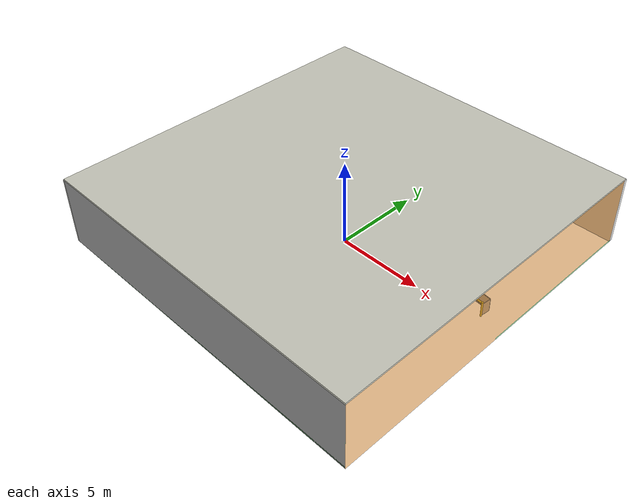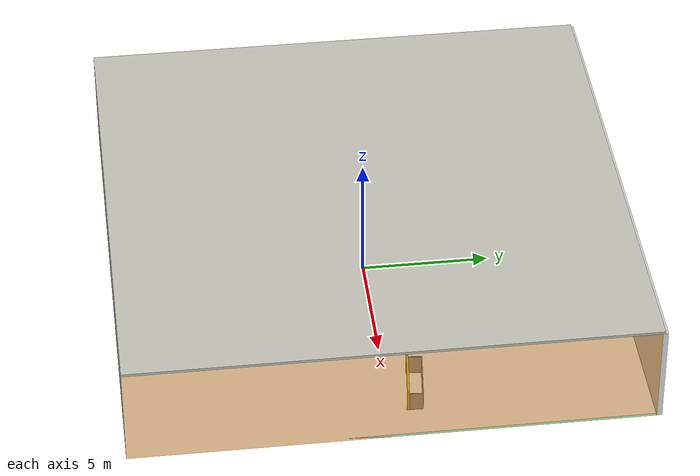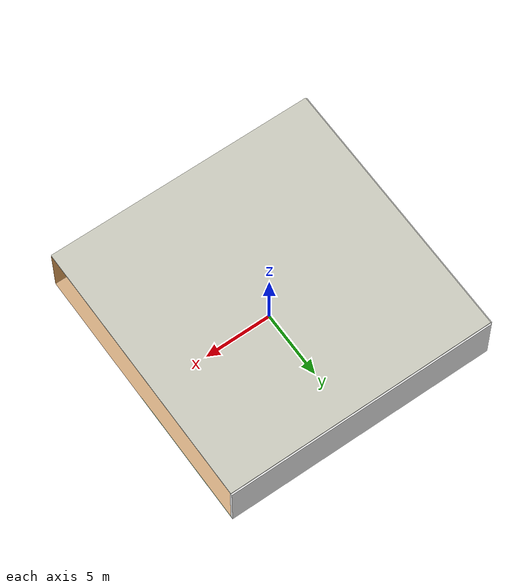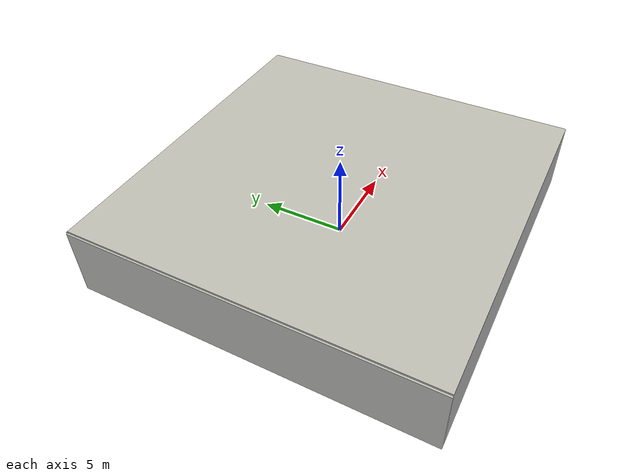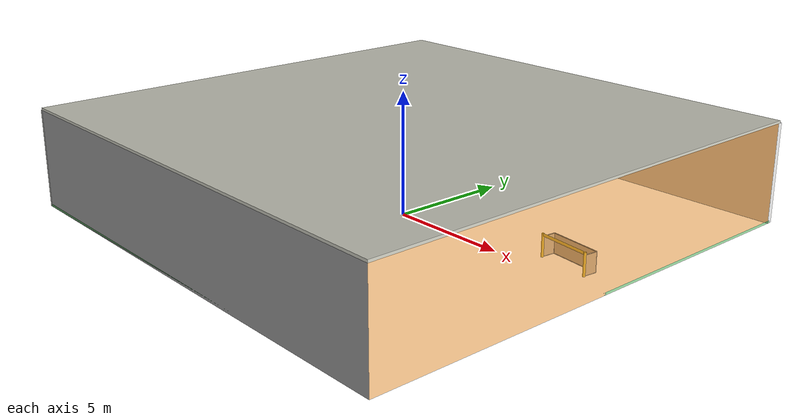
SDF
<sdf version="1.4">
 <world name="default">
  <physics type="ode">
   <max_step_size>0.001</max_step_size>
   <real_time_factor>1</real_time_factor>
   <real_time_update_rate>1000</real_time_update_rate>
   <gravity>0 0 -9.8</gravity>
  </physics>
  <scene><ambient>0.4 0.4 0.4 1</ambient><background>0.7 0.7 0.7 1</background><shadows>1</shadows></scene>
  <model name="Surrounding">
   <static>1</static>
   <link name="Ceiling">
    <collision name="Ceiling_Collision"><geometry><box><size>20 20 0.1</size></box></geometry></collision>
    <visual name="Ceiling_Visual">
     <geometry><box><size>20 20 0.1</size></box></geometry>
     <material>
      <script><uri>file://media/materials/scripts/gazebo.material</uri><name>Gazebo/PaintedWall</name></script>
     </material>
    </visual>
    <pose>0 0 4.05 0 0 0</pose>
   </link>
   <link name="Wall_South">
    <collision name="Wall_South_Collision">
     <geometry><box><size>20 0 4</size></box></geometry>
     <pose>0 0 2 0 -0 0</pose>
    </collision>
    <visual name="Wall_South_Visual">
     <pose>0 0 2 0 -0 0</pose>
     <geometry><box><size>20 0 4</size></box></geometry>
     <material>
      <script><uri>file://media/materials/scripts/gazebo.material</uri><name>Gazebo/Grey</name></script>
     </material>
    </visual>
    <velocity_decay><linear>0</linear><angular>0</angular></velocity_decay>
    <pose>0 -10 0 0 -0 0</pose>
   </link>
   <link name="Wall_East">
    <collision name="Wall_21_Collision">
     <geometry><box><size>20 0 4</size></box></geometry>
     <pose>0 0 2 0 -0 0</pose>
    </collision>
    <visual name="Wall_21_Visual">
     <pose>0 0 2 0 -0 0</pose>
     <geometry><box><size>20 0 4</size></box></geometry>
     <material>
      <script>
       <uri>file://media/materials/scripts/gazebo.material</uri>
       <name>Gazebo/OrangeTransparent</name>
      </script>
     </material>
    </visual>
    <velocity_decay><linear>0</linear><angular>0</angular></velocity_decay>
    <pose>10 0 0 0 -0 1.5708</pose>
   </link>
   <link name="Wall_North">
    <collision name="Wall_22_Collision">
     <geometry><box><size>20 0.2 4</size></box></geometry>
     <pose>0 0 2 0 -0 0</pose>
    </collision>
    <visual name="Wall_22_Visual">
     <pose>0 0 2 0 -0 0</pose>
     <geometry><box><size>20 0.2 4</size></box></geometry>
     <material>
      <script><uri>file://media/materials/scripts/gazebo.material</uri><name>Gazebo/WhiteGlow</name></script>
     </material>
    </visual>
    <velocity_decay><linear>0</linear><angular>0</angular></velocity_decay>
    <pose>0 10 0 0 -0 0</pose>
   </link>
   <link name="Wall_West">
    <collision name="Wall_23_Collision">
     <geometry><box><size>20 0.2 4</size></box></geometry>
     <pose>0 0 2 0 -0 0</pose>
    </collision>
    <visual name="Wall_23_Visual">
     <pose>0 0 2 0 -0 0</pose>
     <geometry><box><size>20 0.2 4</size></box></geometry>
     <material>
      <script><uri>file://media/materials/scripts/gazebo.material</uri><name>Gazebo/CeilingTiled</name></script>
     </material>
    </visual>
    <velocity_decay><linear>0</linear><angular>0</angular></velocity_decay>
    <pose>-10 0 0 0 0 -1.5708</pose>
   </link>
   <link name="Ground_link">
    <collision name="collision">
     <pose>0 0 .05 0 -0 0</pose>
     <geometry><box><size>20 20 0.1</size></box></geometry>
    </collision>
    <visual name="visual">
     <pose>0 0 .05 0 -0 0</pose>
     <geometry><box><size>20 20 0.1</size></box></geometry>
     <material>
      <script><uri>file://media/materials/scripts/gazebo.material</uri><name>Gazebo/GreenTransparent</name></script>
     </material>
    </visual>
   </link>
   <static>1</static>
  </model>
  <spherical_coordinates>
   <surface_model>EARTH_WGS84</surface_model>
   <latitude_deg>0</latitude_deg>
   <longitude_deg>0</longitude_deg>
   <elevation>0</elevation>
   <heading_deg>0</heading_deg>
  </spherical_coordinates>
  <light name="lightball_0" type="diffuse">
   <diffuse>0.8 0.8 0.8 1</diffuse>
   <specular>0.2 0.2 0.2 1</specular>
   <attenuation>
    <range>100</range>
    <constant>0.7</constant>
    <linear>0.01</linear>
    <quadratic>0.001</quadratic>
   </attenuation>
   <direction>-0.5 0.1 -0.9</direction>
   <pose>-3.91878108987 8.94584183822 3.69061158874 0 0 0</pose>
  </light>
  <light name="lightball_1" type="diffuse">
   <diffuse>0.8 0.8 0.8 1</diffuse>
   <specular>0.2 0.2 0.2 1</specular>
   <attenuation>
    <range>100</range>
    <constant>0.7</constant>
    <linear>0.01</linear>
    <quadratic>0.001</quadratic>
   </attenuation>
   <direction>-0.5 0.1 -0.9</direction>
   <pose>5.53094914349 3.93202873382 3.3261579557 0 0 0</pose>
  </light>
  <light name="lightball_2" type="diffuse">
   <diffuse>0.8 0.8 0.8 1</diffuse>
   <specular>0.2 0.2 0.2 1</specular>
   <attenuation>
    <range>100</range>
    <constant>0.7</constant>
    <linear>0.01</linear>
    <quadratic>0.001</quadratic>
   </attenuation>
   <direction>-0.5 0.1 -0.9</direction>
   <pose>-5.2527751826 5.85807187247 3.58484174557 0 0 0</pose>
  </light>
  <light name="lightball_3" type="diffuse">
   <diffuse>0.8 0.8 0.8 1</diffuse>
   <specular>0.2 0.2 0.2 1</specular>
   <attenuation>
    <range>100</range>
    <constant>0.7</constant>
    <linear>0.01</linear>
    <quadratic>0.001</quadratic>
   </attenuation>
   <direction>-0.5 0.1 -0.9</direction>
   <pose>-3.86724168985 -0.738106189683 2.67863621411 0 0 0</pose>
  </light>
  <light name="lightball_4" type="diffuse">
   <diffuse>0.8 0.8 0.8 1</diffuse>
   <specular>0.2 0.2 0.2 1</specular>
   <attenuation>
    <range>100</range>
    <constant>0.7</constant>
    <linear>0.01</linear>
    <quadratic>0.001</quadratic>
   </attenuation>
   <direction>-0.5 0.1 -0.9</direction>
   <pose>-1.91636714678 1.64870567669 3.22007673928 0 0 0</pose>
  </light>
  <include>
   <uri>model://robocup_3Dsim_goal</uri>
   <pose>-3.72772873804 5.19594910923 0 0 0 1.53165974094</pose>
  </include>
  <include><uri>model://table</uri><pose>-2.42682081567 -2.06500008536 0 0 0 0.480950545755</pose></include>
  <include>
   <uri>model://robocup_3Dsim_goal</uri>
   <pose>-1.21954951625 4.01744877175 0 0 0 1.17727344252</pose>
  </include>
  <include><uri>model://cabinet</uri><pose>1.59865332403 5.51106307426 0 0 0 1.84838319963</pose></include>
  <include>
   <uri>model://robocup_3Dsim_goal</uri>
   <pose>7.51014269605 0.795004390231 0 0 0 1.46392887558</pose>
  </include>
 </world>
</sdf>

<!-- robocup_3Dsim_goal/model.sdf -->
<sdf version="1.5">
  <model name="robocup_3d_goal">
    <static>true</static>
    <link name="left_post">
      <pose>0 1.05 0.45 0 0 0</pose>
      <collision name="collision">
        <geometry>
          <cylinder>
            <radius>0.05</radius>
            <length>0.9</length>
          </cylinder>
        </geometry>
      </collision>
      <visual name="visual">
        <geometry>
          <cylinder>
            <radius>0.05</radius>
            <length>0.9</length>
          </cylinder>
        </geometry>
        <material>
          <script>
            <uri>file://media/materials/scripts/gazebo.material</uri>
            <name>Gazebo/ZincYellow</name>
          </script>
        </material>
      </visual>
    </link>
    <link name="left_support_horiz_lower">
      <pose>0.30 1.05 0.01 0 0 0</pose>
      <collision name="collision">
        <geometry>
          <box>
            <size>0.50 0.02 0.02</size>
          </box>
        </geometry>
      </collision>
      <visual name="visual">
        <geometry>
          <box>
            <size>0.50 0.02 0.02</size>
          </box>
        </geometry>
        <material>
          <script>
            <uri>file://media/materials/scripts/gazebo.material</uri>
            <name>Gazebo/White</name>
          </script>
        </material>
      </visual>
    </link>
    <link name="left_support_horiz_upper">
      <pose>0.30 1.05 0.79 0 0 0</pose>
      <collision name="collision">
        <geometry>
          <box>
            <size>0.50 0.02 0.02</size>
          </box>
        </geometry>
      </collision>
      <visual name="visual">
        <geometry>
          <box>
            <size>0.50 0.02 0.02</size>
          </box>
        </geometry>
        <material>
          <script>
            <uri>file://media/materials/scripts/gazebo.material</uri>
            <name>Gazebo/White</name>
          </script>
        </material>
      </visual>
    </link>
    <link name="left_support_vertical">
      <pose>0.56 1.05 0.4 0 1.5708 0</pose>
      <collision name="collision">
        <geometry>
          <box>
            <size>0.80 0.02 0.02</size>
          </box>
        </geometry>
      </collision>
      <visual name="visual">
        <geometry>
          <box>
            <size>0.80 0.02 0.02</size>
          </box>
        </geometry>
        <material>
          <script>
            <uri>file://media/materials/scripts/gazebo.material</uri>
            <name>Gazebo/White</name>
          </script>
        </material>
      </visual>
    </link>
    <link name="right_support_horiz_lower">
      <pose>0.30 -1.05 0.01 0 0 0</pose>
      <collision name="collision">
        <geometry>
          <box>
            <size>0.50 0.02 0.02</size>
          </box>
        </geometry>
      </collision>
      <visual name="visual">
        <geometry>
          <box>
            <size>0.50 0.02 0.02</size>
          </box>
        </geometry>
        <material>
          <script>
            <uri>file://media/materials/scripts/gazebo.material</uri>
            <name>Gazebo/White</name>
          </script>
        </material>
      </visual>
    </link>
    <link name="right_support_horiz_upper">
      <pose>0.30 -1.05 0.79 0 0 0</pose>
      <collision name="collision">
        <geometry>
          <box>
            <size>0.50 0.02 0.02</size>
          </box>
        </geometry>
      </collision>
      <visual name="visual">
        <geometry>
          <box>
            <size>0.50 0.02 0.02</size>
          </box>
        </geometry>
        <material>
          <script>
            <uri>file://media/materials/scripts/gazebo.material</uri>
            <name>Gazebo/White</name>
          </script>
        </material>
      </visual>
    </link>
    <link name="right_support_vertical">
      <pose>0.56 -1.05 0.4 0 1.5708 0</pose>
      <collision name="collision">
        <geometry>
          <box>
            <size>0.80 0.02 0.02</size>
          </box>
        </geometry>
      </collision>
      <visual name="visual">
        <geometry>
          <box>
            <size>0.80 0.02 0.02</size>
          </box>
        </geometry>
        <material>
          <script>
            <uri>file://media/materials/scripts/gazebo.material</uri>
            <name>Gazebo/White</name>
          </script>
        </material>
      </visual>
    </link>
    <link name="center_support_horiz_lower">
      <pose>0.56 0 0.01 0 1.5708 0</pose>
      <collision name="collision">
        <geometry>
          <box>
            <size>0.02 2.08 0.02</size>
          </box>
        </geometry>
      </collision>
      <visual name="visual">
        <geometry>
          <box>
            <size>0.02 2.08 0.02</size>
          </box>
        </geometry>
        <material>
          <script>
            <uri>file://media/materials/scripts/gazebo.material</uri>
            <name>Gazebo/White</name>
          </script>
        </material>
      </visual>
    </link>
    <link name="center_support_horiz_upper">
      <pose>0.56 0 0.79 0 1.5708 0</pose>
      <collision name="collision">
        <geometry>
          <box>
            <size>0.02 2.08 0.02</size>
          </box>
        </geometry>
      </collision>
      <visual name="visual">
        <geometry>
          <box>
            <size>0.02 2.08 0.02</size>
          </box>
        </geometry>
        <material>
          <script>
            <uri>file://media/materials/scripts/gazebo.material</uri>
            <name>Gazebo/White</name>
          </script>
        </material>
      </visual>
    </link>
    <link name="right_post">
      <pose>0 -1.05 0.45 0 0 0</pose>
      <collision name="collision">
        <geometry>
          <cylinder>
            <radius>0.05</radius>
            <length>0.9</length>
          </cylinder>
        </geometry>
      </collision>
      <visual name="visual">
        <geometry>
          <cylinder>
            <radius>0.05</radius>
            <length>0.9</length>
          </cylinder>
        </geometry>
        <material>
          <script>
            <uri>file://media/materials/scripts/gazebo.material</uri>
            <name>Gazebo/ZincYellow</name>
          </script>
        </material>
      </visual>
    </link>
    <link name="crossbar">
      <pose>0 0 0.85 1.57 1.57 0</pose>
      <collision name="collision">
        <geometry>
          <cylinder>
            <radius>0.05</radius>
            <length>2.0</length>
          </cylinder>
        </geometry>
      </collision>
      <visual name="visual">
        <geometry>
          <cylinder>
            <radius>0.05</radius>
            <length>2.0</length>
          </cylinder>
        </geometry>
        <material>
          <script>
            <uri>file://media/materials/scripts/gazebo.material</uri>
            <name>Gazebo/ZincYellow</name>
          </script>
        </material>
      </visual>
    </link>
    <link name="center_net">
      <pose>0.56 0 0.40 0 0 0</pose>
      <collision name="collision">
        <geometry>
          <box>
            <size>0.01 2.1 0.80</size>
          </box>
        </geometry>
      </collision>
      <visual name="visual">
        <geometry>
          <box>
            <size>0.01 2.1 0.80</size>
          </box>
        </geometry>
        <material>
          <script>
            <uri>model://../model_source/models/robocup09_spl_field/materials/scripts/</uri>
            <uri>model://../model_source/models/robocup09_spl_field/materials/textures/</uri>
            <name>RoboCup/Net</name>
          </script>
        </material>
      </visual>
    </link>
    <link name="left_net">
      <pose>0.30 1.05 0.40 0 0 0</pose>
      <collision name="collision">
        <geometry>
          <box>
            <size>0.50 0.01 0.76</size>
          </box>
        </geometry>
      </collision>
      <visual name="visual">
        <geometry>
          <box>
            <size>0.50 0.01 0.76</size>
          </box>
        </geometry>
        <material>
          <script>
            <uri>model://../model_source/models/robocup09_spl_field/materials/scripts/</uri>
            <uri>model://../model_source/models/robocup09_spl_field/materials/textures/</uri>
            <name>RoboCup/Net</name>
          </script>
        </material>
      </visual>
    </link>
    <link name="right_net">
      <pose>0.30 -1.05 0.40 0 0 0</pose>
      <collision name="collision">
        <geometry>
          <box>
            <size>0.50 0.01 0.76</size>
          </box>
        </geometry>
      </collision>
      <visual name="visual">
        <geometry>
          <box>
            <size>0.50 0.01 0.76</size>
          </box>
        </geometry>
        <material>
          <script>
            <uri>model://../model_source/models/robocup09_spl_field/materials/scripts/</uri>
            <uri>model://../model_source/models/robocup09_spl_field/materials/textures/</uri>
            <name>RoboCup/Net</name>
          </script>
        </material>
      </visual>
    </link>
  </model>
</sdf>

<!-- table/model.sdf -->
<sdf version="1.5">
  <model name="table">
    <static>true</static>
    <link name="link">
      <collision name="surface">
        <pose>0 0 1.0 0 0 0</pose>
        <geometry>
          <box>
            <size>1.5 0.8 0.03</size>
          </box>
        </geometry>
        <surface>
          <friction>
            <ode>
              <mu>0.6</mu>
              <mu2>0.6</mu2>
            </ode>
          </friction>
        </surface>
      </collision>
      <visual name="visual1">
        <pose>0 0 1.0 0 0 0</pose>
        <geometry>
          <box>
            <size>1.5 0.8 0.03</size>
          </box>
        </geometry>
        <material>
          <script>
            <uri>model://media/materials/scripts/gazebo.material</uri>
            <name>Gazebo/Wood</name>
          </script>
        </material>
      </visual>
      <collision name="front_left_leg">
        <pose>0.68 0.38 0.5 0 0 0</pose>
        <geometry>
          <cylinder>
            <radius>0.02</radius>
            <length>1.0</length>
          </cylinder>
        </geometry>
      </collision>
      <visual name="front_left_leg">
        <pose>0.68 0.38 0.5 0 0 0</pose>
        <geometry>
          <cylinder>
            <radius>0.02</radius>
            <length>1.0</length>
          </cylinder>
        </geometry>
        <material>
          <script>
            <uri>model://media/materials/scripts/gazebo.material</uri>
            <name>Gazebo/Grey</name>
          </script>
        </material>
      </visual>
      <collision name="front_right_leg">
        <pose>0.68 -0.38 0.5 0 0 0</pose>
        <geometry>
          <cylinder>
            <radius>0.02</radius>
            <length>1.0</length>
          </cylinder>
        </geometry>
      </collision>
      <visual name="front_right_leg">
        <pose>0.68 -0.38 0.5 0 0 0</pose>
        <geometry>
          <cylinder>
            <radius>0.02</radius>
            <length>1.0</length>
          </cylinder>
        </geometry>
        <material>
          <script>
            <uri>model://media/materials/scripts/gazebo.material</uri>
            <name>Gazebo/Grey</name>
          </script>
        </material>
      </visual>
      <collision name="back_right_leg">
        <pose>-0.68 -0.38 0.5 0 0 0</pose>
        <geometry>
          <cylinder>
            <radius>0.02</radius>
            <length>1.0</length>
          </cylinder>
        </geometry>
      </collision>
      <visual name="back_right_leg">
        <pose>-0.68 -0.38 0.5 0 0 0</pose>
        <geometry>
          <cylinder>
            <radius>0.02</radius>
            <length>1.0</length>
          </cylinder>
        </geometry>
        <material>
          <script>
            <uri>model://media/materials/scripts/gazebo.material</uri>
            <name>Gazebo/Grey</name>
          </script>
        </material>
      </visual>
      <collision name="back_left_leg">
        <pose>-0.68 0.38 0.5 0 0 0</pose>
        <geometry>
          <cylinder>
            <radius>0.02</radius>
            <length>1.0</length>
          </cylinder>
        </geometry>
      </collision>
      <visual name="back_left_leg">
        <pose>-0.68 0.38 0.5 0 0 0</pose>
        <geometry>
          <cylinder>
            <radius>0.02</radius>
            <length>1.0</length>
          </cylinder>
        </geometry>
        <material>
          <script>
            <uri>model://media/materials/scripts/gazebo.material</uri>
            <name>Gazebo/Grey</name>
          </script>
        </material>
      </visual>
    </link>
  </model>
</sdf>

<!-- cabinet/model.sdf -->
<sdf version="1.5">
  <model name="cabinet">
    <static>true</static>
    <link name="cabinet_bottom_plate">
      <inertial>
        <pose>0 0 -1 0 0 0</pose>
        <inertia>
          <ixx>2.050000</ixx>
          <ixy>0</ixy>
          <ixz>0</ixz>
          <iyy>2.050000</iyy>
          <iyz>0</iyz>
          <izz>2.050000</izz>
        </inertia>
        <mass>25.000000</mass>
      </inertial>
      <collision name="cabinet_bottom_plate_geom">
        <pose>0 0 0.010000 0 0 0</pose>
        <geometry>
          <box>
            <size>0.450000 0.450000 0.020000</size>
          </box>
        </geometry>
      </collision>
      <visual name="cabinet_bottom_plate_geom_visual">
        <pose>0 0 0.010000 0 0 0</pose>
        <geometry>
          <box>
            <size>0.450000 0.450000 0.020000</size>
          </box>
        </geometry>
        <material>
          <script>
            <uri>model://media/materials/scripts/gazebo.material</uri>
            <name>Gazebo/Wood</name>
          </script>
        </material>
      </visual>
      <collision name="cabinet_bottom_plate_geom_cabinet_back_plate">
        <pose>0.235000 0 0.510000 0 0 0</pose>
        <geometry>
          <box>
            <size>0.020000 0.450000 1.020000</size>
          </box>
        </geometry>
      </collision>
      <visual name="cabinet_bottom_plate_geom_cabinet_back_plate_visual">
        <pose>0.235000 0 0.510000 0 0 0</pose>
        <geometry>
          <box>
            <size>0.020000 0.450000 1.020000</size>
          </box>
        </geometry>
        <material>
          <script>
            <uri>model://media/materials/scripts/gazebo.material</uri>
            <name>Gazebo/Wood</name>
          </script>
        </material>
      </visual>
      <collision name="cabinet_bottom_plate_geom_cabinet_left_plate">
        <pose>0 0.235000 0.510000 0 0 0</pose>
        <geometry>
          <box>
            <size>0.450000 0.020000 1.020000</size>
          </box>
        </geometry>
      </collision>
      <visual name="cabinet_bottom_plate_geom_cabinet_left_plate_visual">
        <pose>0 0.235000 0.510000 0 0 0</pose>
        <geometry>
          <box>
            <size>0.450000 0.020000 1.020000</size>
          </box>
        </geometry>
        <material>
          <script>
            <uri>model://media/materials/scripts/gazebo.material</uri>
            <name>Gazebo/Wood</name>
          </script>
        </material>
      </visual>
      <collision name="cabinet_bottom_plate_geom_cabinet_middle_plate">
        <pose>0 0 0.510000 0 0 0</pose>
        <geometry>
          <box>
            <size>0.450000 0.450000 0.020000</size>
          </box>
        </geometry>
      </collision>
      <visual name="cabinet_bottom_plate_geom_cabinet_middle_plate_visual">
        <pose>0 0 0.510000 0 0 0</pose>
        <geometry>
          <box>
            <size>0.450000 0.450000 0.020000</size>
          </box>
        </geometry>
        <material>
          <script>
            <uri>model://media/materials/scripts/gazebo.material</uri>
            <name>Gazebo/Wood</name>
          </script>
        </material>
      </visual>
      <collision name="cabinet_bottom_plate_geom_cabinet_right_plate">
        <pose>0 -0.235000 0.510000 0 0 0</pose>
        <geometry>
          <box>
            <size>0.450000 0.020000 1.020000</size>
          </box>
        </geometry>
      </collision>
      <visual name="cabinet_bottom_plate_geom_cabinet_right_plate_visual">
        <pose>0 -0.235000 0.510000 0 0 0</pose>
        <geometry>
          <box>
            <size>0.450000 0.020000 1.020000</size>
          </box>
        </geometry>
        <material>
          <script>
            <uri>model://media/materials/scripts/gazebo.material</uri>
            <name>Gazebo/Wood</name>
          </script>
        </material>
      </visual>
      <collision name="cabinet_bottom_plate_geom_cabinet_top_plate">
        <pose>0 0 1.010000 0 0 0</pose>
        <geometry>
          <box>
            <size>0.450000 0.450000 0.020000</size>
          </box>
        </geometry>
      </collision>
      <visual name="cabinet_bottom_plate_geom_cabinet_top_plate_visual">
        <pose>0 0 1.010000 0 0 0</pose>
        <geometry>
          <box>
            <size>0.450000 0.450000 0.020000</size>
          </box>
        </geometry>
        <material>
          <script>
            <uri>model://media/materials/scripts/gazebo.material</uri>
            <name>Gazebo/Wood</name>
          </script>
        </material>
      </visual>
    </link>
  </model>
</sdf>
